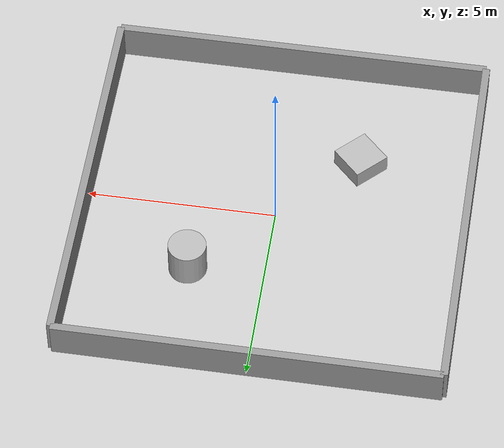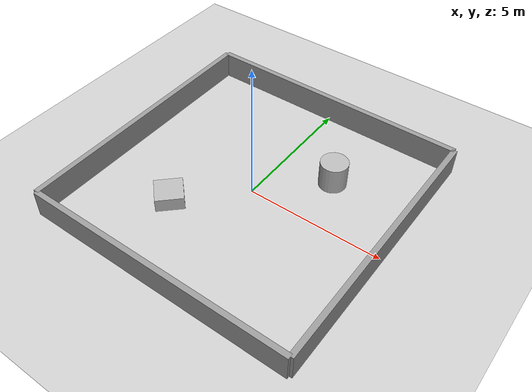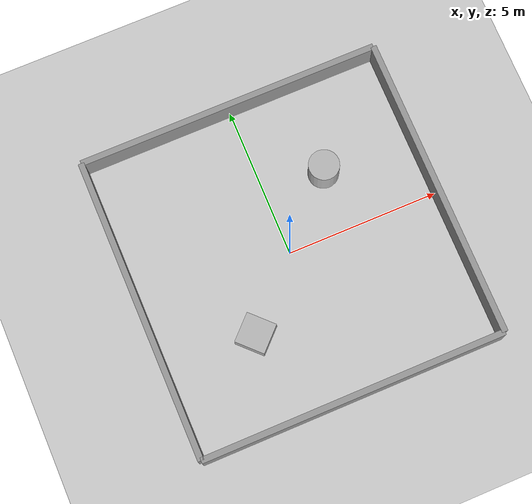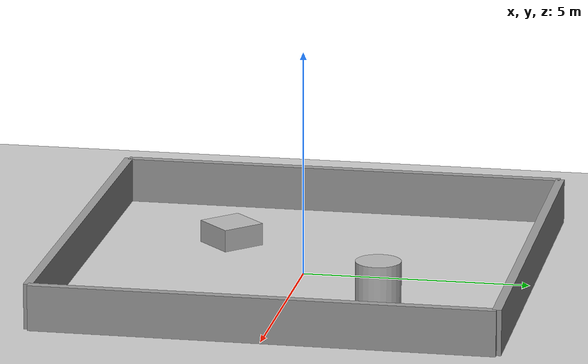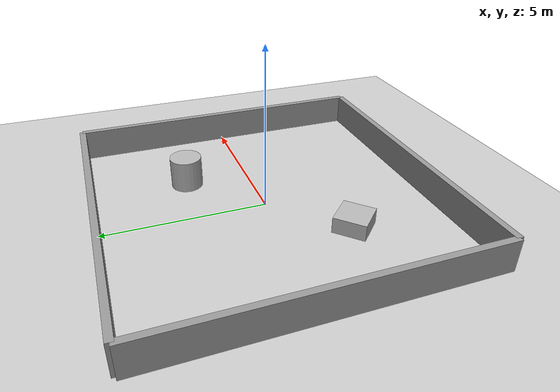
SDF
<?xml version="1.0" ?>
<sdf version="1.6">
  <world name="swarm_arena">
    <!-- Lighting and Physics -->
    <include>
      <uri>model://sun</uri>
    </include>
    <include>
      <uri>model://ground_plane</uri>
    </include>

    <!-- Wall 1 -->
    <model name='wall_1'>
      <pose>5 0 0.5 0 0 0</pose>
      <static>true</static>
      <link name='link'>
        <collision name='collision'>
          <geometry>
            <box>
              <size>0.2 10 1</size>
            </box>
          </geometry>
        </collision>
        <visual name='visual'>
          <geometry>
            <box>
              <size>0.2 10 1</size>
            </box>
          </geometry>
          <material>
            <script>
              <uri>file://media/materials/scripts/gazebo.material</uri>
              <name>Gazebo/Grey</name>
            </script>
          </material>
        </visual>
      </link>
    </model>

    <!-- Wall 2 -->
    <model name='wall_2'>
      <pose>-5 0 0.5 0 0 0</pose>
      <static>true</static>
      <link name='link'>
        <collision name='collision'>
          <geometry>
            <box>
              <size>0.2 10 1</size>
            </box>
          </geometry>
        </collision>
        <visual name='visual'>
          <geometry>
            <box>
              <size>0.2 10 1</size>
            </box>
          </geometry>
          <material>
            <script>
              <uri>file://media/materials/scripts/gazebo.material</uri>
              <name>Gazebo/Grey</name>
            </script>
          </material>
        </visual>
      </link>
    </model>

    <!-- Wall 3 -->
    <model name='wall_3'>
      <pose>0 5 0.5 0 0 0</pose>
      <static>true</static>
      <link name='link'>
        <collision name='collision'>
          <geometry>
            <box>
              <size>10 0.2 1</size>
            </box>
          </geometry>
        </collision>
        <visual name='visual'>
          <geometry>
            <box>
              <size>10 0.2 1</size>
            </box>
          </geometry>
          <material>
            <script>
              <uri>file://media/materials/scripts/gazebo.material</uri>
              <name>Gazebo/Grey</name>
            </script>
          </material>
        </visual>
      </link>
    </model>

    <!-- Wall 4 -->
    <model name='wall_4'>
      <pose>0 -5 0.5 0 0 0</pose>
      <static>true</static>
      <link name='link'>
        <collision name='collision'>
          <geometry>
            <box>
              <size>10 0.2 1</size>
            </box>
          </geometry>
        </collision>
        <visual name='visual'>
          <geometry>
            <box>
              <size>10 0.2 1</size>
            </box>
          </geometry>
          <material>
            <script>
              <uri>file://media/materials/scripts/gazebo.material</uri>
              <name>Gazebo/Grey</name>
            </script>
          </material>
        </visual>
      </link>
    </model>

    <!-- Obstacle 1: A Cylinder -->
    <model name='obstacle_cylinder'>
      <pose>2 2 0.5 0 0 0</pose>
      <static>true</static>
      <link name='link'>
        <collision name='collision'>
          <geometry>
            <cylinder>
              <radius>0.5</radius>
              <length>1</length>
            </cylinder>
          </geometry>
        </collision>
        <visual name='visual'>
          <geometry>
            <cylinder>
              <radius>0.5</radius>
              <length>1</length>
            </cylinder>
          </geometry>
          <material>
            <name>Gazebo/Red</name>
          </material>
        </visual>
      </link>
    </model>

    <!-- Obstacle 2: A Brick/Box -->
    <model name='obstacle_box'>
      <pose>-2 -2 0.25 0 0 0.78</pose>
      <static>true</static>
      <link name='link'>
        <collision name='collision'>
          <geometry>
            <box>
              <size>1 1 0.5</size>
            </box>
          </geometry>
        </collision>
        <visual name='visual'>
          <geometry>
            <box>
              <size>1 1 0.5</size>
            </box>
          </geometry>
          <material>
            <name>Gazebo/Blue</name>
          </material>
        </visual>
      </link>
    </model>

  </world>
</sdf>
